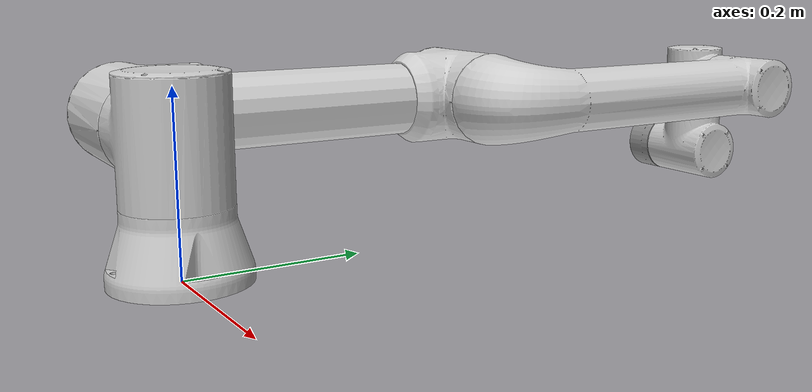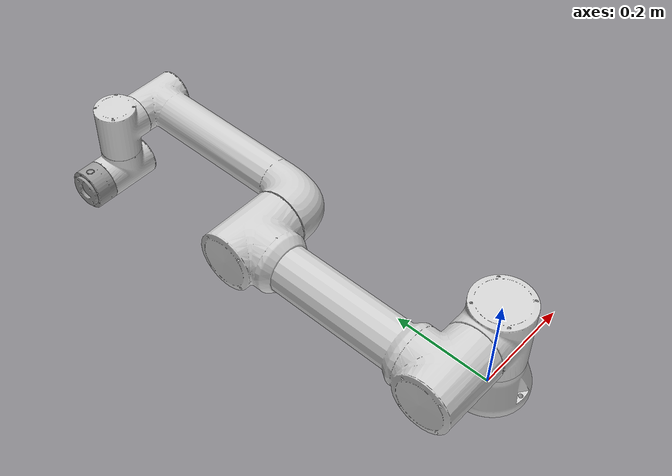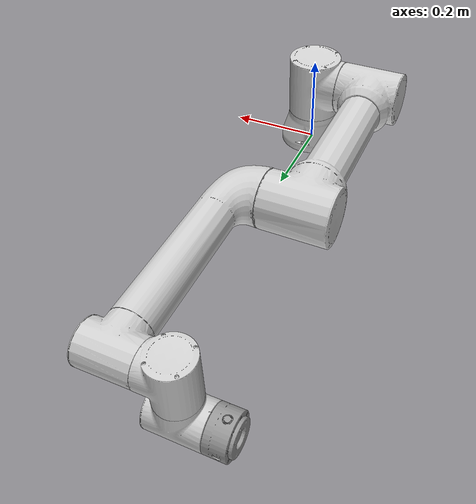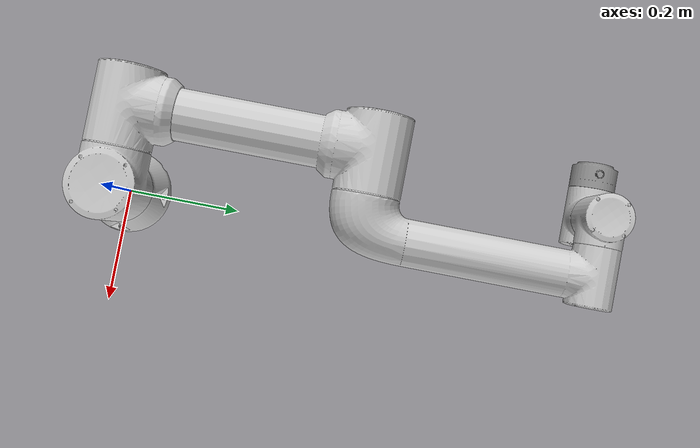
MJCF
<mujoco model="fr5">
  <compiler angle="radian" meshdir="assets" autolimits="true" />

  <option integrator="implicitfast" />

  <default>
    <default class="fr5">
      <material specular="0.5" shininess="0.25" />
      <joint axis="0 0 1" range="-6.28319 6.28319" armature="0.1" />
      <general gaintype="fixed" biastype="affine" ctrlrange="-6.2831 6.2831" gainprm="2000"
        biasprm="0 -2000 -400"
        forcerange="-150 150" />
      <default class="size1">
        <joint range="-3.0543 3.0543" />
        <general ctrlrange="-3.0543 3.0543" />
        <default class="size1_wrist">
          <general gainprm="500" biasprm="0 -500 -100" forcerange="-28 28" />
        </default>
      </default>
      <default class="size2">
        <joint range="-4.6251 1.4835" />
        <general ctrlrange="-4.6251 1.4835" />
        <default class="size2_wrist">
          <general gainprm="500" biasprm="0 -500 -100" forcerange="-28 28" />
        </default>
      </default>
      <default class="size3">
        <joint range="-2.7925 2.7925" />
        <general ctrlrange="-2.7925 2.7925" />
      </default>
      <default class="visual">
        <geom type="mesh" contype="0" conaffinity="0" group="2" />
      </default>
      <default class="collision">
        <geom type="mesh" group="3" />
      </default>
      <site size="0.001" rgba="0.5 0.5 0.5 0.3" group="4" />
    </default>
  </default>

  <asset>
    <material class="fr5" name="gray" rgba="0.82 0.82 0.82 1" />
    <material class="fr5" name="flangegray" rgba="0.6 0.6 0.6 1" />

    <mesh file="fr5_base_link.obj" />
    <mesh file="fr5_link1.obj" />
    <mesh file="fr5_link2.obj" />
    <mesh file="fr5_link3.obj" />
    <mesh file="fr5_link4.obj" />
    <mesh file="fr5_link5.obj" />
    <mesh file="fr5_link6.obj" />
  </asset>

  <worldbody>
    <light name="spotlight" mode="targetbodycom" target="wrist_2_link" pos="0 -1 2" />
    <body name="base" quat="1 0 0 -1" childclass="fr5">
      <inertial mass="1.6185" pos="0.00031896 0.00029673 0.042463" diaginertia="0.0030836 0.0030825 0.0045209" />
      <geom mesh="fr5_base_link" material="gray" class="visual" />
      <body name="shoulder_link" pos="0 0 0.152">
        <inertial mass="4.64" pos="-0.00019 -0.00226 -0.01828" diaginertia="0.0093839 0.0093245 0.0077422" />
        <joint name="shoulder_pan_joint" class="size1" axis="0 0 1" />
        <geom mesh="fr5_link1" material="gray" class="visual" />
        <geom mesh="fr5_link1" class="collision" />
        <body name="upper_arm_link" pos="0 0 0" quat="1 1 0 0">
          <inertial mass="10.08" pos="-0.2125 0 0.1212" diaginertia="0.020605 0.43899 0.43546" />
          <joint name="shoulder_lift_joint" class="size2" axis="0 0 1" />
          <geom mesh="fr5_link2" material="gray" class="visual" />
          <geom mesh="fr5_link2" class="collision" />
          <body name="forearm_link" pos="-0.425 0 0">
            <inertial mass="2.71" pos="-0.27238 0.00017 0.01259" diaginertia="0.0035754 0.071483 0.071119" />
            <joint name="elbow_joint" class="size3" axis="0 0 1" />
            <geom mesh="fr5_link3" material="gray" class="visual" />
            <geom mesh="fr5_link3" class="collision" />
            <body name="wrist_1_link" pos="-0.395 0 0.102">
              <inertial mass="1.56" pos="0 -0.01468 -0.00233" diaginertia="0.001626 0.0012553 0.0015802" />
              <joint name="wrist_1_joint" class="size2_wrist" axis="0 0 1" />
              <geom mesh="fr5_link4" material="gray" class="visual" />
              <geom mesh="fr5_link4" class="collision"/>
              <body name="wrist_2_link" pos="0 -0.102 0" quat="1 1 0 0">
                <inertial mass="1.56" pos="0 0.01468 -0.00233" diaginertia="0.001626 0.0012553 0.0015802" />
                <joint name="wrist_2_joint" class="size1_wrist" axis="0 0 1" />
                <geom mesh="fr5_link5" material="gray" class="visual" />
                <geom mesh="fr5_link5" class="collision" />
                <body name="wrist_3_link" pos="0 0.1 0" quat="1 -1 0 0">
                  <inertial mass="0.36" pos="0.00093 0.00081 -0.02005" diaginertia="0.00023009 0.00023049 0.0003593" />
                  <joint name="wrist_3_joint" class="size1_wrist" axis="0 0 1" />
                  <geom mesh="fr5_link6" material="flangegray" class="visual" />
                  <geom mesh="fr5_link6" class="collision" />
                  <site name="attachment_site" pos="0 0 0" quat="1 0 0 0" />
                </body>
              </body>
            </body>
          </body>
        </body>
      </body>
    </body>
  </worldbody>

  <actuator>
    <general class="size1" name="shoulder_pan" joint="shoulder_pan_joint" />
    <general class="size2" name="shoulder_lift" joint="shoulder_lift_joint" />
    <general class="size3" name="elbow" joint="elbow_joint" />
    <general class="size2_wrist" name="wrist_1" joint="wrist_1_joint" />
    <general class="size1_wrist" name="wrist_2" joint="wrist_2_joint" />
    <general class="size1_wrist" name="wrist_3" joint="wrist_3_joint" />
  </actuator>

  <keyframe>
    <key name="home" qpos="-1.5708 -1.5708 1.5708 -1.5708 -1.5708 0"
      ctrl="-1.5708 -1.5708 1.5708 -1.5708 -1.5708 0" />
  </keyframe>
</mujoco>
